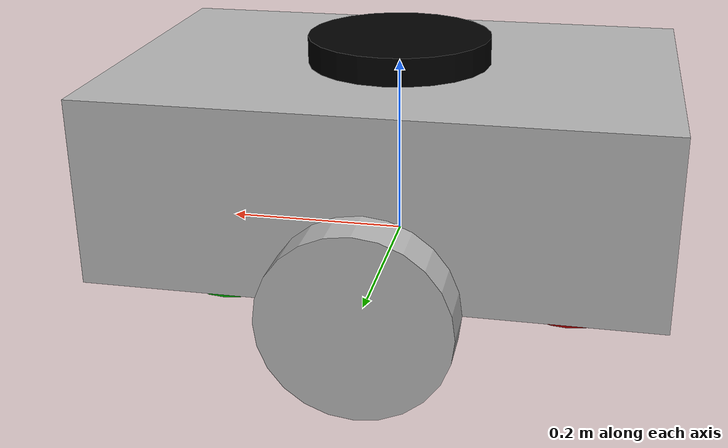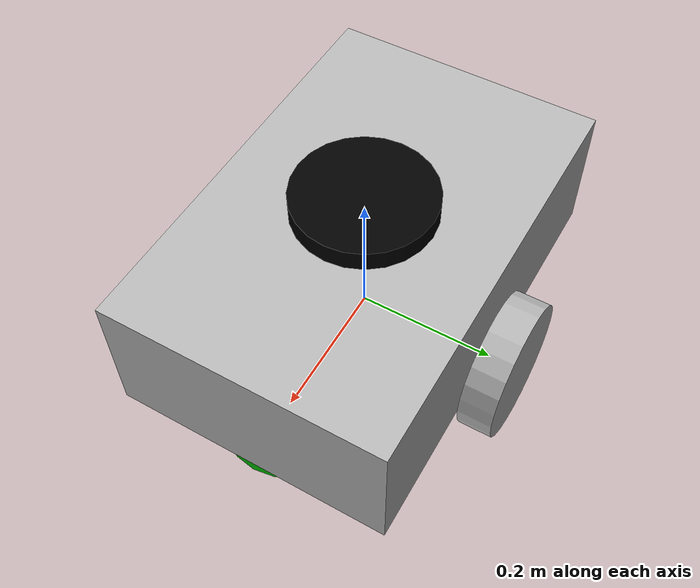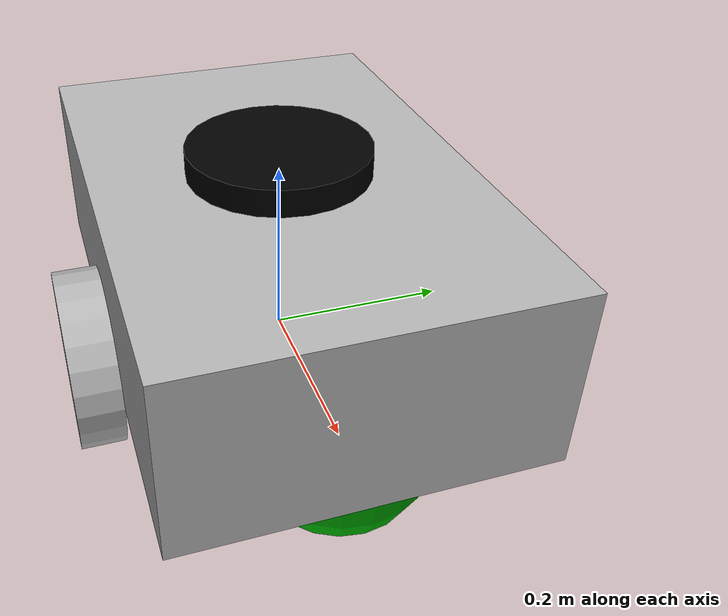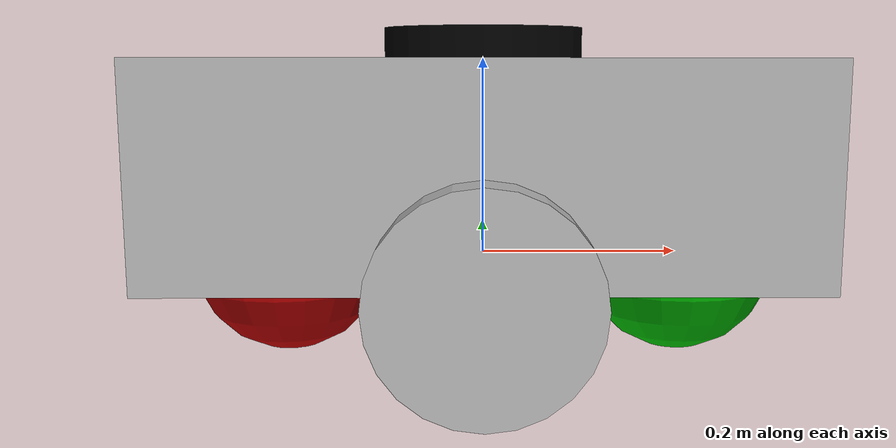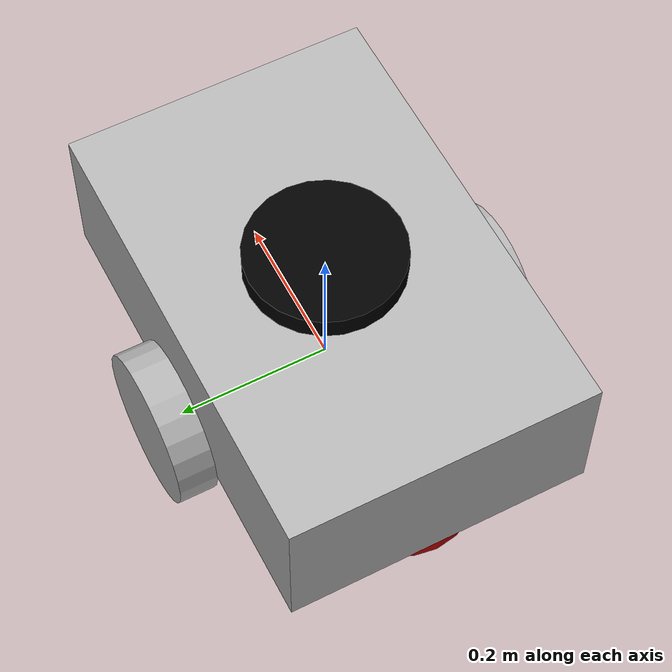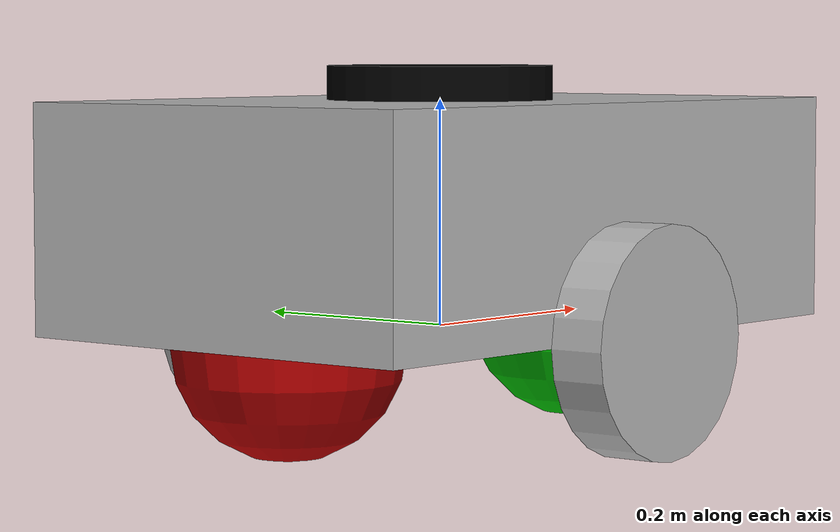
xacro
<?xml version="1.0"?>
<robot xmlns:xacro="http://www.ros.org/wiki/xacro"  name="robot">

    <xacro:arg name="use_ros2_control" default="true"/>

    <xacro:include filename="robot_core.xacro" />

    <xacro:if value="$(arg use_ros2_control)">
        <xacro:include filename="ros2_control.xacro" />
    </xacro:if>
    <xacro:unless value="$(arg use_ros2_control)">
        <xacro:include filename="gazebo_control.xacro" />
    </xacro:unless>
    <xacro:include filename="lidar.xacro" />

</robot>

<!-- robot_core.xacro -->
<robot xmlns:xacro="http://www.ros.org/wiki/xacro">

    <xacro:include filename="inertial_macros.xacro"/>

    <material name="grey">
        <color rgba="0.7 0.7 0.7 1"/>
    </material>

    <material name="green">
        <color rgba="0 0.7 0 1"/>
    </material>

    <material name="white">
        <color rgba="1 1 1 1"/>
    </material>

    <material name="black">
        <color rgba="0 0 0 1"/>
    </material>

    <material name="red">
        <color rgba="0.7 0 0 1"/>
    </material>

    <link name="base_link">

    </link>

    <link name="chassis_link">
         <visual>
            <geometry>
                <box size="0.6 0.4 0.2"/>
            </geometry>
            <origin xyz = "0 0 0.1" rpy="0 0 0" />
            <material name="grey"/>
        </visual>

        <collision>
            <geometry>
                <box size="0.6 0.4 0.2"/>
            </geometry>
            <origin xyz = "0 0 0.1" rpy="0 0 0" />
        </collision>

        <xacro:inertial_box mass="3.0" x = "0.6" y = "0.4" z = "0.2">
            <origin xyz="0 0 0.1 " rpy ="0 0 0"/>
        </xacro:inertial_box>
    </link>

      <link name ="left_wheel">
        <visual>
            <geometry>
                <cylinder radius="0.1" length="0.05"/>
            </geometry>
            <origin xyz="0 0 0" rpy="1.57 0 0"/>
            <material name="grey"/>
        </visual>

        <collision>
            <geometry>
                <sphere radius="0.1"/>
            </geometry>
            <origin xyz="0 0 0" rpy="1.57 0 0"/>

        </collision>

         <xacro:inertial_cylinder mass="0.05" length="0.05" radius="1.0">
            <origin xyz="0 0 0 " rpy ="0 0 0"/>
        </xacro:inertial_cylinder>

    </link>

    <link name ="right_wheel">
        <visual>
            <geometry>
                <cylinder radius="0.1" length="0.05"/>
            </geometry>
            <origin xyz="0 0 0" rpy="1.57 0 0"/>
            <material name="grey"/>
        </visual>

        <collision>
            <geometry>
                <sphere radius="0.1"/>
            </geometry>
            <origin xyz="0 0 0" rpy="1.57 0 0"/>

        </collision>

        <xacro:inertial_cylinder mass="0.05" length="0.05" radius="1.0">
            <origin xyz="0 0 0 " rpy ="0 0 0"/>
        </xacro:inertial_cylinder>

    </link>

    <link name="caster_wheel_1">
        <visual>
            <geometry>
                <sphere radius="0.1"/>
            </geometry>
            <origin xyz="0 0 0" rpy="0 0 0" />
            <material name="red"/>
        </visual>

        <collision>
            <geometry>
                <sphere radius="0.1"/>
            </geometry>
            <origin xyz="0 0 0" rpy="0 0 0" />

        </collision>

        <xacro:inertial_sphere mass="0.005" radius="1.0">
            <origin xyz="0 0 0 " rpy ="0 0 0"/>
        </xacro:inertial_sphere>

    </link>

     <link name="caster_wheel_2">
        <visual>
            <geometry>
                <sphere radius="0.1"/>
            </geometry>
            <origin xyz="0 0 0" rpy="0 0 0" />
            <material name="green"/>

        </visual>

        <collision>
            <geometry>
                <sphere radius="0.1"/>
            </geometry>
            <origin xyz="0 0 0" rpy="0 0 0" />

        </collision>

          <xacro:inertial_sphere mass="0.005" radius="1.0">
            <origin xyz="0 0 0 " rpy ="0 0 0"/>
          </xacro:inertial_sphere>

    </link>

    <joint name="chassis_joint" type="fixed">
        <parent link="base_link"/>
        <child link="chassis_link"/>
        <origin xyz="0 0 0"/>
    </joint>

  <joint name="left_wheel_joint" type="continuous">
        <parent link="base_link"/>
        <child link="left_wheel"/>
        <origin xyz="0 0.225 0" rpy ="0 0 0" />
        <axis xyz="0 1 0"/>
  </joint>

  <joint name="right_wheel_joint" type="continuous">
        <parent link="base_link"/>
        <child link="right_wheel"/>
        <origin xyz="0 -0.225 0" rpy ="0 0 0" />
        <axis xyz="0 1 0"/>
  </joint>

   <joint name="base_caster_wheel_1_joint" type="fixed">
        <parent link="chassis_link"/>
        <child link="caster_wheel_1"/>
        <origin xyz="-0.2 0 0" rpy="0 0 0"/>
    </joint>

     <joint name="base_caster_wheel_2_joint" type="fixed">
        <parent link="chassis_link"/>
        <child link="caster_wheel_2"/>
        <origin xyz="0.2 0 0" rpy="0 0 0"/>
    </joint>

    <gazebo reference="caster_wheel_1">
        <mu1 value="0"/>
        <mu2 value="0"/>
    </gazebo>

     <gazebo reference="caster_wheel_2">
        <mu1 value="0"/>
        <mu2 value="0"/>
    </gazebo>

</robot>

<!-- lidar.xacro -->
<robot xmlns:xacro="http://www.ros.org/wiki/xacro">

    <joint name="lidar_joint" type='fixed'>
        <parent link="chassis_link"/>
        <child link="lidar_link"/>
        <origin xyz="0 0 0.205" rpy="0 0 0"/>
    </joint>

    <link name="lidar_link" type="fixed">
        <visual>
            <geometry>
                <cylinder radius="0.1" length="0.05"/>
            </geometry>
            <origin xyz="0 0 0" rpy="0 0 0"/>
            <material name="black"/>
        </visual>

        <collision>
            <geometry>
                <cylinder radius="0.1" length="0.05"/>
            </geometry>
            <origin xyz="0 0 0" rpy="0 0 0"/>

        </collision>

         <xacro:inertial_cylinder mass="0.05" length="0.05" radius="1.0">
            <origin xyz="0 0 0 " rpy ="0 0 0"/>
        </xacro:inertial_cylinder>

    </link>

    <gazebo reference="lidar_link">
        <material>Gazebo/black</material>

        <sensor name="laser" type="ray">
            <pose> 0 0 0 0 0 0 </pose>
            <visualize>true</visualize>
            <update_rate>10</update_rate>
            <ray>
                <scan>
                    <horizontal>
                        <samples>360</samples>
                        <min_angle>-3.14</min_angle>
                        <max_angle>3.14</max_angle>
                    </horizontal>
                </scan>
                <range>
                    <min>0.3</min>
                    <max>12</max>
                </range>
            </ray>
            <plugin name="laser_controller" filename="libgazebo_ros_ray_sensor.so">
                <ros>
                    <argument>~/out:=scan</argument>
                </ros>
                <output_type>sensor_msgs/LaserScan</output_type>
                <frame_name>laser_frame</frame_name>
            </plugin>
        </sensor>
    </gazebo>
</robot>
